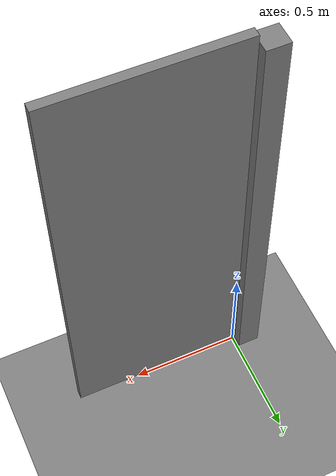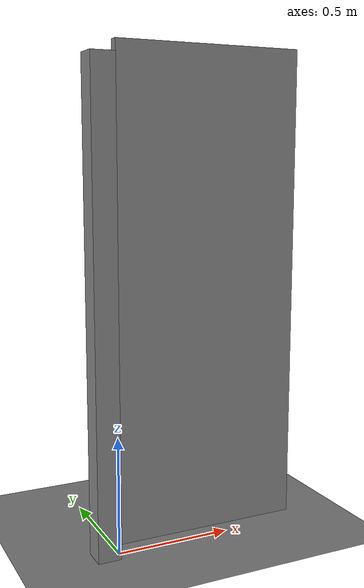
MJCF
<mujoco model="oracle_door">
  <compiler angle="radian" autolimits="true"/>
  <option timestep="0.005"/>

  <worldbody>
    <geom name="floor" type="plane" size="2 2 0.1"/>
    <body name="frame" pos="0 0 0">
      <geom name="post" type="box" size="0.05 0.05 1.0" pos="-0.06 0 1.0"/>

      <body name="door" pos="0 0 0">
        <joint name="door_hinge" type="hinge" axis="0 0 1"
               range="0 1.508" damping="0.4" frictionloss="0.1"/>
        <!-- 12 kg 门叶: 0.8x0.04x2.0 m = 0.064 m^3, density 187.5 -->
        <geom name="door_leaf" type="box" size="0.4 0.02 1.0"
              pos="0.4 0 1.05" density="187.5"/>

        <body name="handle" pos="0.75 0 1.0">
          <!-- armature 等效把手连杆的反射惯量; 两场景取值一致, 避免轻惯量
               关节上的 object-space PD 离散失稳 (见 docs/m0_baseline.md) -->
          <joint name="handle_hinge" type="hinge" axis="0 0 1"
                 range="-1.2 1.2" damping="0.08" stiffness="0.5" springref="0"
                 armature="0.01"/>
          <geom name="handle_bar" type="capsule" size="0.015 0.06"
                fromto="0 0 -0.08 0 0 0.08" density="800"
                contype="0" conaffinity="0"/>
        </body>
      </body>
    </body>
  </worldbody>

  <equality>
    <weld name="latch_weld" body1="door" body2="frame" active="true"
          solref="0.01 1" solimp="0.98 0.999 0.001"/>
  </equality>
</mujoco>
